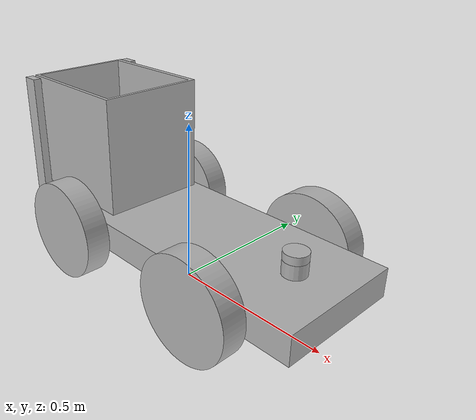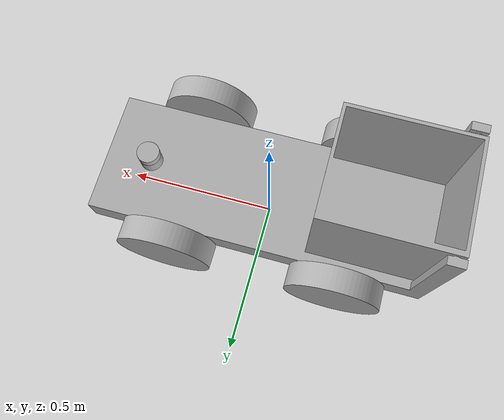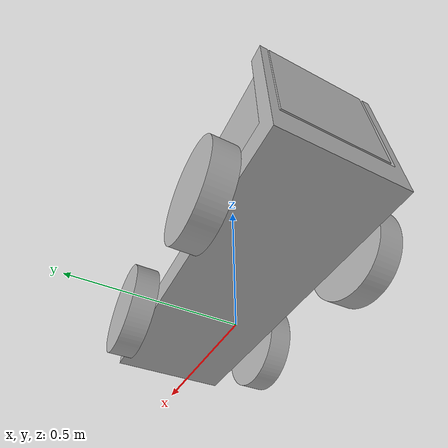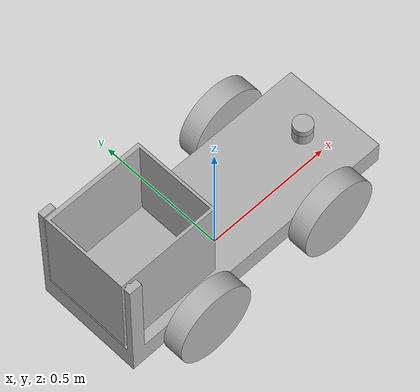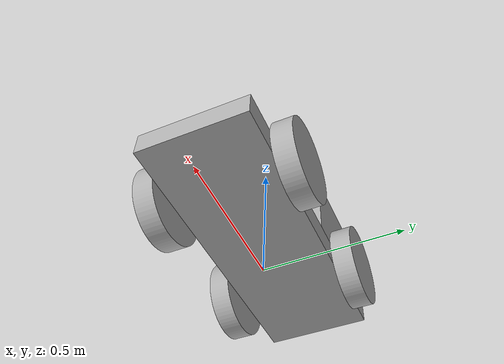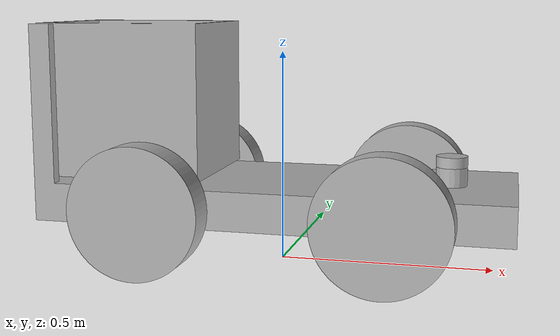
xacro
<?xml version="1.0" ?>
<robot name="Sim" xmlns:xacro="http://www.ros.org/wiki/xacro">

<xacro:include filename="$(find rover_sim)/urdf/materials.xacro" />
<xacro:include filename="$(find rover_sim)/urdf/Sim.trans" />
<xacro:include filename="$(find rover_sim)/urdf/Sim.gazebo" />
<link name="base_link">
  <inertial>
    <origin xyz="-0.010217176975484165 2.035332124121442e-16 0.15794635989902708" rpy="0 0 0"/>
    <mass value="43.16198403094287"/>
    <inertia ixx="0.686298" iyy="4.62213" izz="5.125629" ixy="0.0" iyz="0.0" ixz="0.111555"/>
  </inertial>
  <visual>
    <origin xyz="0 0 0" rpy="0 0 0"/>
    <geometry>
      <mesh filename="package://rover_sim/meshes/base_link.stl" scale="0.001 0.001 0.001"/>
    </geometry>
    <material name="silver"/>
  </visual>
  <collision>
    <origin xyz="0 0 0" rpy="0 0 0"/>
    <geometry>
      <mesh filename="package://rover_sim/meshes/base_link.stl" scale="0.001 0.001 0.001"/>
    </geometry>
  </collision>
</link>

<link name="wheel3_1">
  <inertial>
    <origin xyz="1.1102230246251565e-16 0.03810000000000002 3.6914915568786455e-15" rpy="0 0 0"/>
    <mass value="5.17079983877615"/>
    <inertia ixx="0.032526" iyy="0.060048" izz="0.032526" ixy="0.0" iyz="-0.0" ixz="0.0"/>
  </inertial>
  <visual>
    <origin xyz="0.275 -0.21 -0.1524" rpy="0 0 0"/>
    <geometry>
      <mesh filename="package://rover_sim/meshes/wheel3_1.stl" scale="0.001 0.001 0.001"/>
    </geometry>
    <material name="silver"/>
  </visual>
  <collision>
    <origin xyz="0.275 -0.21 -0.1524" rpy="0 0 0"/>
    <geometry>
      <mesh filename="package://rover_sim/meshes/wheel3_1.stl" scale="0.001 0.001 0.001"/>
    </geometry>
  </collision>
</link>

<link name="wheel2_1">
  <inertial>
    <origin xyz="5.551115123125783e-17 0.038099999999999884 3.6914915568786455e-15" rpy="0 0 0"/>
    <mass value="5.17079983877615"/>
    <inertia ixx="0.032526" iyy="0.060048" izz="0.032526" ixy="0.0" iyz="0.0" ixz="0.0"/>
  </inertial>
  <visual>
    <origin xyz="-0.275 -0.21 -0.1524" rpy="0 0 0"/>
    <geometry>
      <mesh filename="package://rover_sim/meshes/wheel2_1.stl" scale="0.001 0.001 0.001"/>
    </geometry>
    <material name="silver"/>
  </visual>
  <collision>
    <origin xyz="-0.275 -0.21 -0.1524" rpy="0 0 0"/>
    <geometry>
      <mesh filename="package://rover_sim/meshes/wheel2_1.stl" scale="0.001 0.001 0.001"/>
    </geometry>
  </collision>
</link>

<link name="wheel1_1">
  <inertial>
    <origin xyz="-5.551115123125783e-17 -0.03810000000000002 3.6914915568786455e-15" rpy="0 0 0"/>
    <mass value="5.17079983877615"/>
    <inertia ixx="0.032526" iyy="0.060048" izz="0.032526" ixy="0.0" iyz="0.0" ixz="0.0"/>
  </inertial>
  <visual>
    <origin xyz="-0.275 0.21 -0.1524" rpy="0 0 0"/>
    <geometry>
      <mesh filename="package://rover_sim/meshes/wheel1_1.stl" scale="0.001 0.001 0.001"/>
    </geometry>
    <material name="silver"/>
  </visual>
  <collision>
    <origin xyz="-0.275 0.21 -0.1524" rpy="0 0 0"/>
    <geometry>
      <mesh filename="package://rover_sim/meshes/wheel1_1.stl" scale="0.001 0.001 0.001"/>
    </geometry>
  </collision>
</link>

<link name="wheel4_1">
  <inertial>
    <origin xyz="-5.551115123125783e-17 -0.038099999999999884 3.6914915568786455e-15" rpy="0 0 0"/>
    <mass value="5.17079983877615"/>
    <inertia ixx="0.032526" iyy="0.060048" izz="0.032526" ixy="0.0" iyz="-0.0" ixz="-0.0"/>
  </inertial>
  <visual>
    <origin xyz="0.275 0.21 -0.1524" rpy="0 0 0"/>
    <geometry>
      <mesh filename="package://rover_sim/meshes/wheel4_1.stl" scale="0.001 0.001 0.001"/>
    </geometry>
    <material name="silver"/>
  </visual>
  <collision>
    <origin xyz="0.275 0.21 -0.1524" rpy="0 0 0"/>
    <geometry>
      <mesh filename="package://rover_sim/meshes/wheel4_1.stl" scale="0.001 0.001 0.001"/>
    </geometry>
  </collision>
</link>

<link name="dump_1">
  <inertial>
    <origin xyz="0.17003553115914338 0.17922499310589943 -0.20554520775582574" rpy="0 0 0"/>
    <mass value="65.04406534684018"/>
    <inertia ixx="1.921537" iyy="2.093764" izz="2.246735" ixy="0.000408" iyz="-0.043648" ixz="-0.000475"/>
  </inertial>
  <visual>
    <origin xyz="0.525 0.165 -0.54615" rpy="0 0 0"/>
    <geometry>
      <mesh filename="package://rover_sim/meshes/dump_1.stl" scale="0.001 0.001 0.001"/>
    </geometry>
    <material name="silver"/>
  </visual>
  <collision>
    <origin xyz="0.525 0.165 -0.54615" rpy="0 0 0"/>
    <geometry>
      <mesh filename="package://rover_sim/meshes/dump_1.stl" scale="0.001 0.001 0.001"/>
    </geometry>
  </collision>
</link>

<link name="lidar_1">
  <inertial>
    <origin xyz="1.6653345369377348e-16 -1.3322676295501885e-16 0.012500000000003703" rpy="0 0 0"/>
    <mass value="0.10789485809488791"/>
    <inertia ixx="4.1e-05" iyy="4.1e-05" izz="7e-05" ixy="0.0" iyz="-0.0" ixz="0.0"/>
  </inertial>
  <visual>
    <origin xyz="-0.4 0.0 -0.24115" rpy="0 0 0"/>
    <geometry>
      <mesh filename="package://rover_sim/meshes/lidar_1.stl" scale="0.001 0.001 0.001"/>
    </geometry>
    <material name="silver"/>
  </visual>
  <collision>
    <origin xyz="-0.4 0.0 -0.24115" rpy="0 0 0"/>
    <geometry>
      <mesh filename="package://rover_sim/meshes/lidar_1.stl" scale="0.001 0.001 0.001"/>
    </geometry>
  </collision>
</link>

<joint name="Rev13" type="continuous">
  <origin xyz="-0.275 0.21 0.1524" rpy="0 0 0"/>
  <parent link="base_link"/>
  <child link="wheel3_1"/>
  <axis xyz="0.0 1.0 0.0"/>
</joint>

<joint name="Rev14" type="continuous">
  <origin xyz="0.275 0.21 0.1524" rpy="0 0 0"/>
  <parent link="base_link"/>
  <child link="wheel2_1"/>
  <axis xyz="0.0 1.0 0.0"/>
</joint>

<joint name="Rev15" type="continuous">
  <origin xyz="0.275 -0.21 0.1524" rpy="0 0 0"/>
  <parent link="base_link"/>
  <child link="wheel1_1"/>
  <axis xyz="-0.0 -1.0 0.0"/>
</joint>

<joint name="Rev16" type="continuous">
  <origin xyz="-0.275 -0.21 0.1524" rpy="0 0 0"/>
  <parent link="base_link"/>
  <child link="wheel4_1"/>
  <axis xyz="0.0 1.0 0.0"/>
</joint>

<joint name="Rev17" type="fixed">
  <origin xyz="-0.525 -0.165 0.54615" rpy="0 0 0"/>
  <parent link="base_link"/>
  <child link="dump_1"/>
  <axis xyz="0.0 1.0 0.0"/>
</joint>

<joint name="Rigid18" type="fixed">
  <origin xyz="0.4 0.0 0.24115" rpy="0 0 0"/>
  <parent link="base_link"/>
  <child link="lidar_1"/>
</joint>

</robot>

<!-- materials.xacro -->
<robot name="Sim" xmlns:xacro="http://www.ros.org/wiki/xacro" >

<material name="silver">
  <color rgba="0.700 0.700 0.700 1.000"/>
</material>

</robot>

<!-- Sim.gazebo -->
<robot name="Sim" xmlns:xacro="http://www.ros.org/wiki/xacro" >

<xacro:property name="body_color" value="Gazebo/Silver" />

<gazebo>
  <plugin name="control" filename="libgazebo_ros_control.so"/>
</gazebo>
<gazebo reference="base_link">
  <material>${body_color}</material>
  <mu1>0.2</mu1>
  <mu2>0.2</mu2>
  <selfCollide>true</selfCollide>
  <gravity>true</gravity>
</gazebo>

<gazebo reference="wheel3_1">
  <material>${body_color}</material>
  <mu1>0.2</mu1>
  <mu2>0.2</mu2>
  <selfCollide>true</selfCollide>
</gazebo>

<gazebo reference="wheel2_1">
  <material>${body_color}</material>
  <mu1>0.2</mu1>
  <mu2>0.2</mu2>
  <selfCollide>true</selfCollide>
</gazebo>

<gazebo reference="wheel1_1">
  <material>${body_color}</material>
  <mu1>0.2</mu1>
  <mu2>0.2</mu2>
  <selfCollide>true</selfCollide>
</gazebo>

<gazebo reference="wheel4_1">
  <material>${body_color}</material>
  <mu1>0.2</mu1>
  <mu2>0.2</mu2>
  <selfCollide>true</selfCollide>
</gazebo>

<gazebo reference="dump_1">
  <material>${body_color}</material>
  <mu1>0.2</mu1>
  <mu2>0.2</mu2>
  <selfCollide>true</selfCollide>
</gazebo>

<gazebo reference="lidar_1">
  <material>${body_color}</material>
  <mu1>0.2</mu1>
  <mu2>0.2</mu2>
  <selfCollide>true</selfCollide>
</gazebo>

<gazebo reference="lidar_1">
  <sensor type="ray" name="head_hokuyo_sensor">
    <pose>0 0 0 0 0 0</pose>
    <visualize>true</visualize>
    <update_rate>40</update_rate>
    <ray>
      <scan>
        <horizontal>
          <samples>720</samples>
          <resolution>1</resolution>
          <min_angle>-1.570796</min_angle>
          <max_angle>6.3</max_angle>
        </horizontal>
      </scan>
      <range>
        <min>0.10</min>
        <max>10.0</max>
        <resolution>0.01</resolution>
      </range>
      <noise>
        <type>gaussian</type>
        <mean>0.0</mean>
        <stddev>0.01</stddev>
      </noise>
    </ray>
    <plugin name="gazebo_ros_head_hokuyo_controller" filename="libgazebo_ros_laser.so">
      <topicName>/scan</topicName>
      <frameName>lidar_1</frameName>
    </plugin>
  </sensor>
</gazebo>

<gazebo>

      <plugin name='skid_steer_drive' filename='libgazebo_ros_skid_steer_drive.so'>
        <updateRate>500</updateRate>

        <leftFrontJoint>Rev14</leftFrontJoint>
        <rightFrontJoint>Rev15</rightFrontJoint>
        <leftRearJoint>Rev13</leftRearJoint>
        <rightRearJoint>Rev16</rightRearJoint>

        <wheelSeparation>1.25</wheelSeparation>
        <wheelDiameter>0.3</wheelDiameter>

        <torque>20</torque>

        <commandTopic>cmd_vel</commandTopic>
        <odometryTopic>odom</odometryTopic>
        <odometryFrame>odom</odometryFrame>
        <broadcastTF>false</broadcastTF>
      </plugin>
</gazebo>

</robot>
